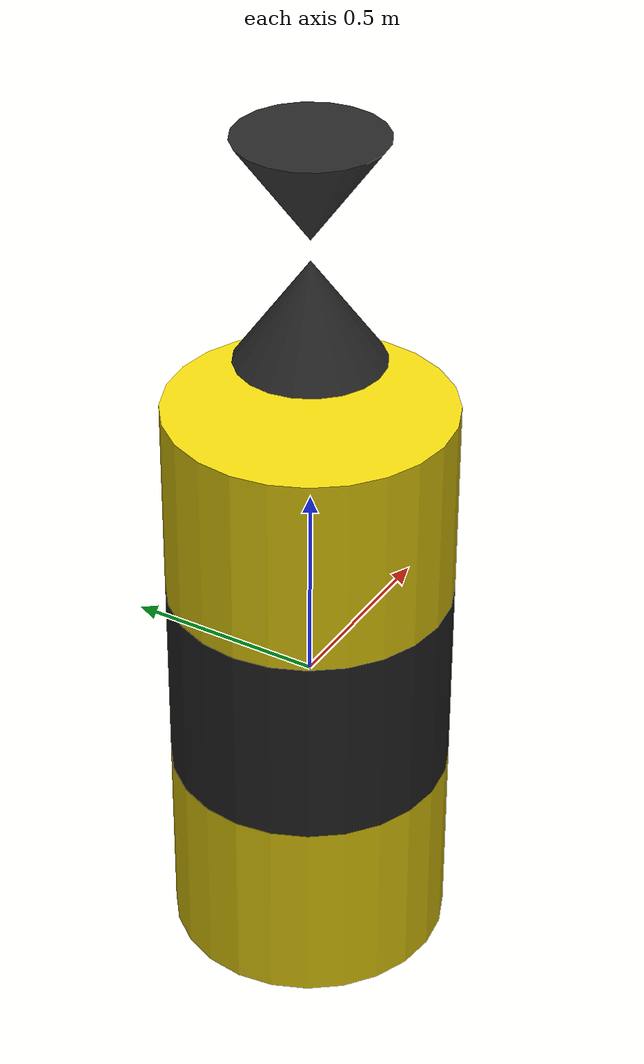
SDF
<?xml version="1.0" ?>
<sdf version="1.9">
  <model name="cardinal_west">
    <static>true</static>
    <link name="link">
      <!-- Mast Top (Yellow) -->
      <collision name="mast_top_collision">
        <pose>0 0 0.5 0 0 0</pose>
        <geometry>
          <cylinder>
            <radius>0.35</radius>
            <length>0.5</length>
          </cylinder>
        </geometry>
      </collision>
      <visual name="mast_top">
        <pose>0 0 0.5 0 0 0</pose>
        <geometry>
          <cylinder>
            <radius>0.35</radius>
            <length>0.5</length>
          </cylinder>
        </geometry>
        <material>
          <ambient>0.85 0.75 0.05 1</ambient>
          <diffuse>0.95 0.85 0.05 1</diffuse>
        </material>
      </visual>

      <!-- Mast Middle (Black) -->
      <collision name="mast_middle_collision">
        <pose>0 0 0.0 0 0 0</pose>
        <geometry>
          <cylinder>
            <radius>0.35</radius>
            <length>0.5</length>
          </cylinder>
        </geometry>
      </collision>
      <visual name="mast_middle">
        <pose>0 0 0.0 0 0 0</pose>
        <geometry>
          <cylinder>
            <radius>0.35</radius>
            <length>0.5</length>
          </cylinder>
        </geometry>
        <material>
          <ambient>0.1 0.1 0.1 1</ambient>
          <diffuse>0.15 0.15 0.15 1</diffuse>
        </material>
      </visual>

      <!-- Mast Bottom (Yellow) -->
      <collision name="mast_bottom_collision">
        <pose>0 0 -0.5 0 0 0</pose>
        <geometry>
          <cylinder>
            <radius>0.35</radius>
            <length>0.5</length>
          </cylinder>
        </geometry>
      </collision>
      <visual name="mast_bottom">
        <pose>0 0 -0.5 0 0 0</pose>
        <geometry>
          <cylinder>
            <radius>0.35</radius>
            <length>0.5</length>
          </cylinder>
        </geometry>
        <material>
          <ambient>0.85 0.75 0.05 1</ambient>
          <diffuse>0.95 0.85 0.05 1</diffuse>
        </material>
      </visual>

      <!-- Topmark Cones (Point-to-point: Lower points UP, Upper points DOWN) -->
      <visual name="cone_lower">
        <pose>0 0 1.0 0 0 0</pose>
        <geometry>
          <cone>
            <radius>0.18</radius>
            <length>0.25</length>
          </cone>
        </geometry>
        <material>
          <ambient>0.1 0.1 0.1 1</ambient>
          <diffuse>0.15 0.15 0.15 1</diffuse>
        </material>
      </visual>

      <visual name="cone_upper">
        <pose>0 0 1.3 0 3.14159265359 0</pose>
        <geometry>
          <cone>
            <radius>0.18</radius>
            <length>0.25</length>
          </cone>
        </geometry>
        <material>
          <ambient>0.1 0.1 0.1 1</ambient>
          <diffuse>0.15 0.15 0.15 1</diffuse>
        </material>
      </visual>
    </link>
  </model>
</sdf>
